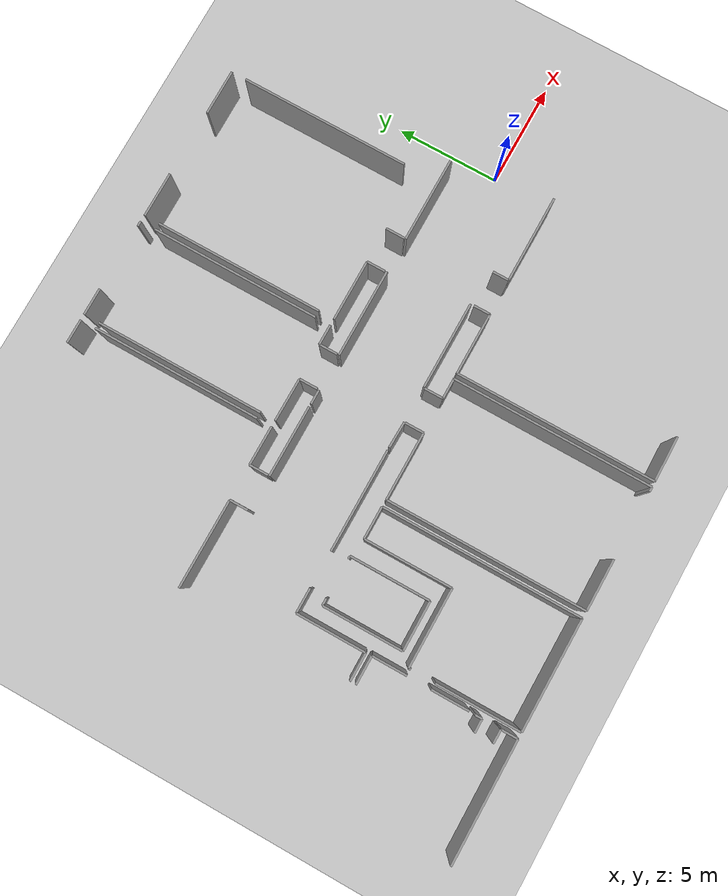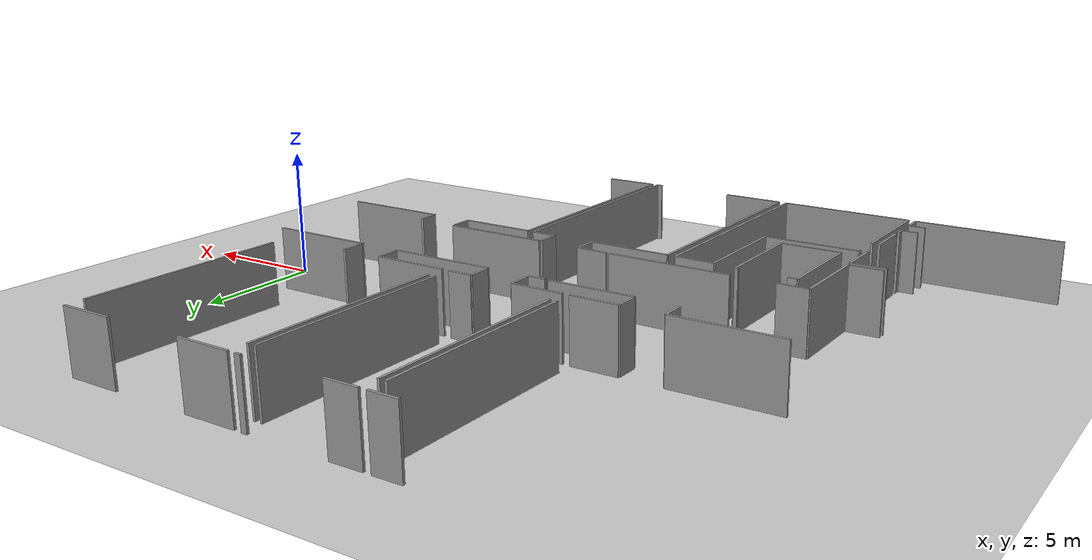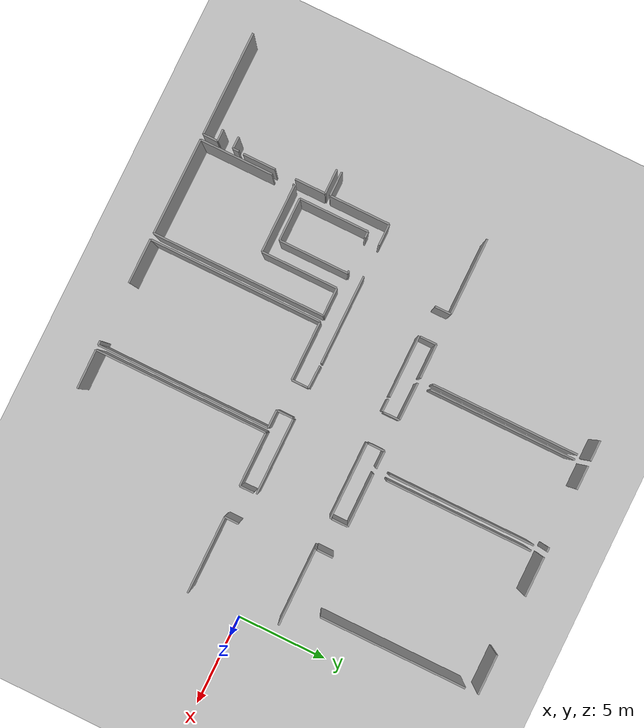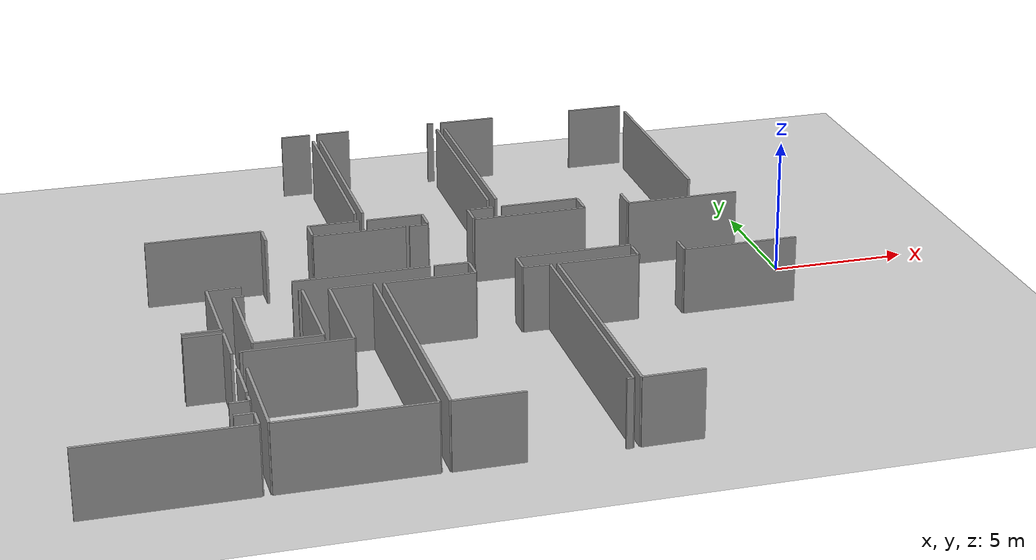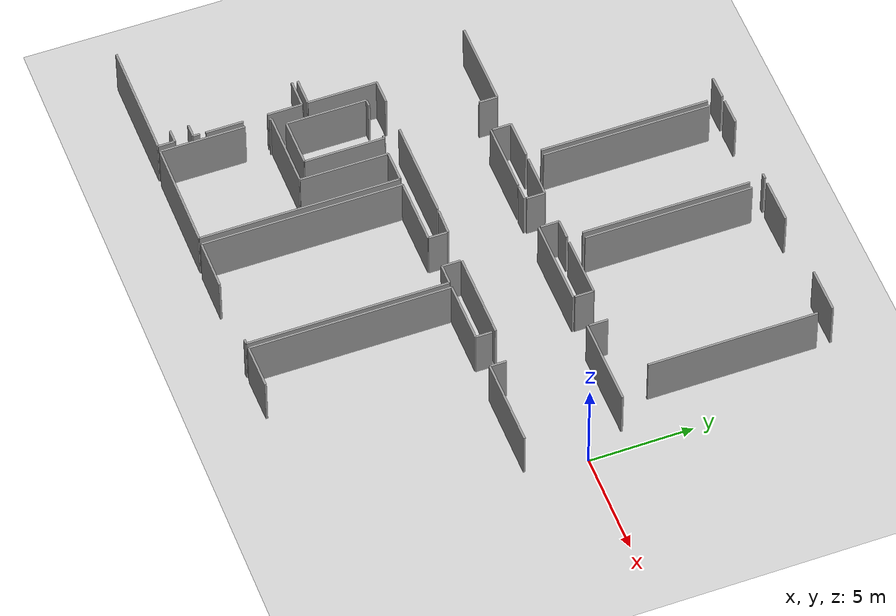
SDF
<sdf version="1.6">
 <world name="default">
  <model name="ground_plane">
   <static>1</static>
   <link name="link">
    <collision name="collision">
     <geometry><plane><normal>0 0 1</normal><size>100 100</size></plane></geometry>
     <surface><friction><ode><mu>100</mu><mu2>50</mu2></ode></friction></surface>
    </collision>
    <visual name="visual">
     <cast_shadows>0</cast_shadows>
     <geometry><plane><normal>0 0 1</normal><size>100 100</size></plane></geometry>
     <material>
      <script><uri>file://media/materials/scripts/gazebo.material</uri><name>Gazebo/Grey</name></script>
     </material>
    </visual>
   </link>
  </model>
  <model name="50052754">
   <static>1</static>
   <link name="Wall_12">
    <collision name="Wall_12_Collision">
     <geometry><box><size>1.14437858569 0.1 2.5</size></box></geometry>
     <pose>0.572189292846 0 1.25 0 0 0</pose>
    </collision>
    <visual name="Wall_12_Visual">
     <pose>0.572189292846 0 1.25 0 0 0</pose>
     <geometry><box><size>1.14437858569 0.1 2.5</size></box></geometry>
     <material>
      <script><uri>file://media/materials/scripts/gazebo.material</uri><name>Gazebo/Grey</name></script>
      <ambient>1 1 1 1</ambient>
     </material>
    </visual>
    <pose>22.520396843 -0.00456432850487 0 0 0 0.0</pose>
   </link>
   <link name="Wall_13">
    <collision name="Wall_13_Collision">
     <geometry><box><size>8.13198516593 0.1 2.5</size></box></geometry>
     <pose>4.06599258297 0 1.25 0 0 0</pose>
    </collision>
    <visual name="Wall_13_Visual">
     <pose>4.06599258297 0 1.25 0 0 0</pose>
     <geometry><box><size>8.13198516593 0.1 2.5</size></box></geometry>
     <material>
      <script><uri>file://media/materials/scripts/gazebo.material</uri><name>Gazebo/Grey</name></script>
      <ambient>1 1 1 1</ambient>
     </material>
    </visual>
    <pose>23.6647754287 -0.729024691749 0 0 0 -1.57079632679</pose>
   </link>
   <link name="Wall_14">
    <collision name="Wall_14_Collision">
     <geometry><box><size>1.9021839044 0.1 2.5</size></box></geometry>
     <pose>0.951091952201 0 1.25 0 0 0</pose>
    </collision>
    <visual name="Wall_14_Visual">
     <pose>0.951091952201 0 1.25 0 0 0</pose>
     <geometry><box><size>1.9021839044 0.1 2.5</size></box></geometry>
     <material>
      <script><uri>file://media/materials/scripts/gazebo.material</uri><name>Gazebo/Grey</name></script>
      <ambient>1 1 1 1</ambient>
     </material>
    </visual>
    <pose>23.6647754287 -9.58597736854 0 0 0 3.14159265359</pose>
   </link>
   <link name="Wall_15">
    <collision name="Wall_15_Collision">
     <geometry><box><size>0.907413864148 0.1 2.5</size></box></geometry>
     <pose>0.453706932074 0 1.25 0 0 0</pose>
    </collision>
    <visual name="Wall_15_Visual">
     <pose>0.453706932074 0 1.25 0 0 0</pose>
     <geometry><box><size>0.907413864148 0.1 2.5</size></box></geometry>
     <material>
      <script><uri>file://media/materials/scripts/gazebo.material</uri><name>Gazebo/Grey</name></script>
      <ambient>1 1 1 1</ambient>
     </material>
    </visual>
    <pose>21.7625915243 -9.58597736854 0 0 0 -1.57079632679</pose>
   </link>
   <link name="Wall_16">
    <collision name="Wall_16_Collision">
     <geometry><box><size>0.890170845352 0.1 2.5</size></box></geometry>
     <pose>0.445085422676 0 1.25 0 0 0</pose>
    </collision>
    <visual name="Wall_16_Visual">
     <pose>0.445085422676 0 1.25 0 0 0</pose>
     <geometry><box><size>0.890170845352 0.1 2.5</size></box></geometry>
     <material>
      <script><uri>file://media/materials/scripts/gazebo.material</uri><name>Gazebo/Grey</name></script>
      <ambient>1 1 1 1</ambient>
     </material>
    </visual>
    <pose>20.0465307934 -10.4933912327 0 0 0 1.57079632679</pose>
   </link>
   <link name="Wall_17">
    <collision name="Wall_17_Collision">
     <geometry><box><size>4.25547560937 0.1 2.5</size></box></geometry>
     <pose>2.12773780468 0 1.25 0 0 0</pose>
    </collision>
    <visual name="Wall_17_Visual">
     <pose>2.12773780468 0 1.25 0 0 0</pose>
     <geometry><box><size>4.25547560937 0.1 2.5</size></box></geometry>
     <material>
      <script><uri>file://media/materials/scripts/gazebo.material</uri><name>Gazebo/Grey</name></script>
      <ambient>1 1 1 1</ambient>
     </material>
    </visual>
    <pose>20.0465307934 -9.60322038733 0 0 0 3.14159265359</pose>
   </link>
   <link name="Wall_33">
    <collision name="Wall_33_Collision">
     <geometry><box><size>3.44099654506 0.1 2.5</size></box></geometry>
     <pose>1.72049827253 0 1.25 0 0 0</pose>
    </collision>
    <visual name="Wall_33_Visual">
     <pose>1.72049827253 0 1.25 0 0 0</pose>
     <geometry><box><size>3.44099654506 0.1 2.5</size></box></geometry>
     <material>
      <script><uri>file://media/materials/scripts/gazebo.material</uri><name>Gazebo/Grey</name></script>
      <ambient>1 1 1 1</ambient>
     </material>
    </visual>
    <pose>21.7524485721 -10.5665472757 0 0 0 0.0</pose>
   </link>
   <link name="Wall_34">
    <collision name="Wall_34_Collision">
     <geometry><box><size>4.93429268757 0.1 2.5</size></box></geometry>
     <pose>2.46714634378 0 1.25 0 0 0</pose>
    </collision>
    <visual name="Wall_34_Visual">
     <pose>2.46714634378 0 1.25 0 0 0</pose>
     <geometry><box><size>4.93429268757 0.1 2.5</size></box></geometry>
     <material>
      <script><uri>file://media/materials/scripts/gazebo.material</uri><name>Gazebo/Grey</name></script>
      <ambient>1 1 1 1</ambient>
     </material>
    </visual>
    <pose>25.1934451171 -14.4353228312 0 0 0 3.14159265359</pose>
   </link>
   <link name="Wall_35">
    <collision name="Wall_35_Collision">
     <geometry><box><size>1.2011791182 0.1 2.5</size></box></geometry>
     <pose>0.600589559099 0 1.25 0 0 0</pose>
    </collision>
    <visual name="Wall_35_Visual">
     <pose>0.600589559099 0 1.25 0 0 0</pose>
     <geometry><box><size>1.2011791182 0.1 2.5</size></box></geometry>
     <material>
      <script><uri>file://media/materials/scripts/gazebo.material</uri><name>Gazebo/Grey</name></script>
      <ambient>1 1 1 1</ambient>
     </material>
    </visual>
    <pose>18.4888269042 -14.4353228312 0 0 0 3.14159265359</pose>
   </link>
   <link name="Wall_36">
    <collision name="Wall_36_Collision">
     <geometry><box><size>3.34970997496 0.1 2.5</size></box></geometry>
     <pose>1.67485498748 0 1.25 0 0 0</pose>
    </collision>
    <visual name="Wall_36_Visual">
     <pose>1.67485498748 0 1.25 0 0 0</pose>
     <geometry><box><size>3.34970997496 0.1 2.5</size></box></geometry>
     <material>
      <script><uri>file://media/materials/scripts/gazebo.material</uri><name>Gazebo/Grey</name></script>
      <ambient>1 1 1 1</ambient>
     </material>
    </visual>
    <pose>17.287647786 -14.4353228312 0 0 0 -1.57079632679</pose>
   </link>
   <link name="Wall_37">
    <collision name="Wall_37_Collision">
     <geometry><box><size>1.34520903991 0.1 2.5</size></box></geometry>
     <pose>0.672604519953 0 1.25 0 0 0</pose>
    </collision>
    <visual name="Wall_37_Visual">
     <pose>0.672604519953 0 1.25 0 0 0</pose>
     <geometry><box><size>1.34520903991 0.1 2.5</size></box></geometry>
     <material>
      <script><uri>file://media/materials/scripts/gazebo.material</uri><name>Gazebo/Grey</name></script>
      <ambient>1 1 1 1</ambient>
     </material>
    </visual>
    <pose>17.287647786 -17.7850328061 0 0 0 3.14159265359</pose>
   </link>
   <link name="Wall_39">
    <collision name="Wall_39_Collision">
     <geometry><box><size>3.87283273638 0.1 2.5</size></box></geometry>
     <pose>1.93641636819 0 1.25 0 0 0</pose>
    </collision>
    <visual name="Wall_39_Visual">
     <pose>1.93641636819 0 1.25 0 0 0</pose>
     <geometry><box><size>3.87283273638 0.1 2.5</size></box></geometry>
     <material>
      <script><uri>file://media/materials/scripts/gazebo.material</uri><name>Gazebo/Grey</name></script>
      <ambient>1 1 1 1</ambient>
     </material>
    </visual>
    <pose>18.1016197027 -19.1108434499 0 0 0 1.57079632679</pose>
   </link>
   <link name="Wall_40">
    <collision name="Wall_40_Collision">
     <geometry><box><size>0.355256901962 0.1 2.5</size></box></geometry>
     <pose>0.177628450981 0 1.25 0 0 0</pose>
    </collision>
    <visual name="Wall_40_Visual">
     <pose>0.177628450981 0 1.25 0 0 0</pose>
     <geometry><box><size>0.355256901962 0.1 2.5</size></box></geometry>
     <material>
      <script><uri>file://media/materials/scripts/gazebo.material</uri><name>Gazebo/Grey</name></script>
      <ambient>1 1 1 1</ambient>
     </material>
    </visual>
    <pose>18.1016197027 -15.2380107135 0 0 0 0.0</pose>
   </link>
   <link name="Wall_41">
    <collision name="Wall_41_Collision">
     <geometry><box><size>0.140860249136 0.1 2.5</size></box></geometry>
     <pose>0.0704301245681 0 1.25 0 0 0</pose>
    </collision>
    <visual name="Wall_41_Visual">
     <pose>0.0704301245681 0 1.25 0 0 0</pose>
     <geometry><box><size>0.140860249136 0.1 2.5</size></box></geometry>
     <material>
      <script><uri>file://media/materials/scripts/gazebo.material</uri><name>Gazebo/Grey</name></script>
      <ambient>1 1 1 1</ambient>
     </material>
    </visual>
    <pose>20.3361120796 -15.2380107135 0 0 0 0.0</pose>
   </link>
   <link name="Wall_42">
    <collision name="Wall_42_Collision">
     <geometry><box><size>3.86700053884 0.1 2.5</size></box></geometry>
     <pose>1.93350026942 0 1.25 0 0 0</pose>
    </collision>
    <visual name="Wall_42_Visual">
     <pose>1.93350026942 0 1.25 0 0 0</pose>
     <geometry><box><size>3.86700053884 0.1 2.5</size></box></geometry>
     <material>
      <script><uri>file://media/materials/scripts/gazebo.material</uri><name>Gazebo/Grey</name></script>
      <ambient>1 1 1 1</ambient>
     </material>
    </visual>
    <pose>20.4769723288 -15.2380107135 0 0 0 -1.57079632679</pose>
   </link>
   <link name="Wall_43">
    <collision name="Wall_43_Collision">
     <geometry><box><size>2.37535978595 0.1 2.5</size></box></geometry>
     <pose>1.18767989298 0 1.25 0 0 0</pose>
    </collision>
    <visual name="Wall_43_Visual">
     <pose>1.18767989298 0 1.25 0 0 0</pose>
     <geometry><box><size>2.37535978595 0.1 2.5</size></box></geometry>
     <material>
      <script><uri>file://media/materials/scripts/gazebo.material</uri><name>Gazebo/Grey</name></script>
      <ambient>1 1 1 1</ambient>
     </material>
    </visual>
    <pose>20.4769723288 -19.1050112523 0 0 0 -3.13913736095</pose>
   </link>
   <link name="Wall_46">
    <collision name="Wall_46_Collision">
     <geometry><box><size>1.81229199024 0.1 2.5</size></box></geometry>
     <pose>0.906145995119 0 1.25 0 0 0</pose>
    </collision>
    <visual name="Wall_46_Visual">
     <pose>0.906145995119 0 1.25 0 0 0</pose>
     <geometry><box><size>1.81229199024 0.1 2.5</size></box></geometry>
     <material>
      <script><uri>file://media/materials/scripts/gazebo.material</uri><name>Gazebo/Grey</name></script>
      <ambient>1 1 1 1</ambient>
     </material>
    </visual>
    <pose>17.3047640179 -22.7137468699 0 0 0 1.57079632679</pose>
   </link>
   <link name="Wall_47">
    <collision name="Wall_47_Collision">
     <geometry><box><size>1.68930869441 0.1 2.5</size></box></geometry>
     <pose>0.844654347206 0 1.25 0 0 0</pose>
    </collision>
    <visual name="Wall_47_Visual">
     <pose>0.844654347206 0 1.25 0 0 0</pose>
     <geometry><box><size>1.68930869441 0.1 2.5</size></box></geometry>
     <material>
      <script><uri>file://media/materials/scripts/gazebo.material</uri><name>Gazebo/Grey</name></script>
      <ambient>1 1 1 1</ambient>
     </material>
    </visual>
    <pose>17.3047640179 -19.7532726869 0 0 0 1.57079632679</pose>
   </link>
   <link name="Wall_48">
    <collision name="Wall_48_Collision">
     <geometry><box><size>1.36955212527 0.1 2.5</size></box></geometry>
     <pose>0.684776062633 0 1.25 0 0 0</pose>
    </collision>
    <visual name="Wall_48_Visual">
     <pose>0.684776062633 0 1.25 0 0 0</pose>
     <geometry><box><size>1.36955212527 0.1 2.5</size></box></geometry>
     <material>
      <script><uri>file://media/materials/scripts/gazebo.material</uri><name>Gazebo/Grey</name></script>
      <ambient>1 1 1 1</ambient>
     </material>
    </visual>
    <pose>17.3047640179 -18.0639639925 0 0 0 3.14159265359</pose>
   </link>
   <link name="Wall_53">
    <collision name="Wall_53_Collision">
     <geometry><box><size>4.07987574884 0.1 2.5</size></box></geometry>
     <pose>2.03993787442 0 1.25 0 0 0</pose>
    </collision>
    <visual name="Wall_53_Visual">
     <pose>2.03993787442 0 1.25 0 0 0</pose>
     <geometry><box><size>4.07987574884 0.1 2.5</size></box></geometry>
     <material>
      <script><uri>file://media/materials/scripts/gazebo.material</uri><name>Gazebo/Grey</name></script>
      <ambient>1 1 1 1</ambient>
     </material>
    </visual>
    <pose>17.6056293385 -25.0041522711 0 0 0 1.57079632679</pose>
   </link>
   <link name="Wall_54">
    <collision name="Wall_54_Collision">
     <geometry><box><size>0.10967067102 0.1 2.5</size></box></geometry>
     <pose>0.0548353355098 0 1.25 0 0 0</pose>
    </collision>
    <visual name="Wall_54_Visual">
     <pose>0.0548353355098 0 1.25 0 0 0</pose>
     <geometry><box><size>0.10967067102 0.1 2.5</size></box></geometry>
     <material>
      <script><uri>file://media/materials/scripts/gazebo.material</uri><name>Gazebo/Grey</name></script>
      <ambient>1 1 1 1</ambient>
     </material>
    </visual>
    <pose>17.6056293385 -19.7656978034 0 0 0 1.57079632679</pose>
   </link>
   <link name="Wall_55">
    <collision name="Wall_55_Collision">
     <geometry><box><size>3.78928016736 0.1 2.5</size></box></geometry>
     <pose>1.89464008368 0 1.25 0 0 0</pose>
    </collision>
    <visual name="Wall_55_Visual">
     <pose>1.89464008368 0 1.25 0 0 0</pose>
     <geometry><box><size>3.78928016736 0.1 2.5</size></box></geometry>
     <material>
      <script><uri>file://media/materials/scripts/gazebo.material</uri><name>Gazebo/Grey</name></script>
      <ambient>1 1 1 1</ambient>
     </material>
    </visual>
    <pose>17.6056293385 -19.6560271324 0 0 0 0.0</pose>
   </link>
   <link name="Wall_56">
    <collision name="Wall_56_Collision">
     <geometry><box><size>4.25167200228 0.1 2.5</size></box></geometry>
     <pose>2.12583600114 0 1.25 0 0 0</pose>
    </collision>
    <visual name="Wall_56_Visual">
     <pose>2.12583600114 0 1.25 0 0 0</pose>
     <geometry><box><size>4.25167200228 0.1 2.5</size></box></geometry>
     <material>
      <script><uri>file://media/materials/scripts/gazebo.material</uri><name>Gazebo/Grey</name></script>
      <ambient>1 1 1 1</ambient>
     </material>
    </visual>
    <pose>21.3949095058 -19.6560271324 0 0 0 1.57079632679</pose>
   </link>
   <link name="Wall_57">
    <collision name="Wall_57_Collision">
     <geometry><box><size>1.56949507116 0.1 2.5</size></box></geometry>
     <pose>0.78474753558 0 1.25 0 0 0</pose>
    </collision>
    <visual name="Wall_57_Visual">
     <pose>0.78474753558 0 1.25 0 0 0</pose>
     <geometry><box><size>1.56949507116 0.1 2.5</size></box></geometry>
     <material>
      <script><uri>file://media/materials/scripts/gazebo.material</uri><name>Gazebo/Grey</name></script>
      <ambient>1 1 1 1</ambient>
     </material>
    </visual>
    <pose>21.3949095058 -15.4043551301 0 0 0 0.0</pose>
   </link>
   <link name="Wall_58">
    <collision name="Wall_58_Collision">
     <geometry><box><size>9.61856160259 0.1 2.5</size></box></geometry>
     <pose>4.80928080129 0 1.25 0 0 0</pose>
    </collision>
    <visual name="Wall_58_Visual">
     <pose>4.80928080129 0 1.25 0 0 0</pose>
     <geometry><box><size>9.61856160259 0.1 2.5</size></box></geometry>
     <material>
      <script><uri>file://media/materials/scripts/gazebo.material</uri><name>Gazebo/Grey</name></script>
      <ambient>1 1 1 1</ambient>
     </material>
    </visual>
    <pose>22.964404577 -15.4043551301 0 0 0 -1.57079632679</pose>
   </link>
   <link name="Wall_59">
    <collision name="Wall_59_Collision">
     <geometry><box><size>5.35880809154 0.1 2.5</size></box></geometry>
     <pose>2.67940404577 0 1.25 0 0 0</pose>
    </collision>
    <visual name="Wall_59_Visual">
     <pose>2.67940404577 0 1.25 0 0 0</pose>
     <geometry><box><size>5.35880809154 0.1 2.5</size></box></geometry>
     <material>
      <script><uri>file://media/materials/scripts/gazebo.material</uri><name>Gazebo/Grey</name></script>
      <ambient>1 1 1 1</ambient>
     </material>
    </visual>
    <pose>22.964404577 -25.0229167327 0 0 0 3.13809103538</pose>
   </link>
   <link name="Wall_63">
    <collision name="Wall_63_Collision">
     <geometry><box><size>0.326349488098 0.1 2.5</size></box></geometry>
     <pose>0.163174744049 0 1.25 0 0 0</pose>
    </collision>
    <visual name="Wall_63_Visual">
     <pose>0.163174744049 0 1.25 0 0 0</pose>
     <geometry><box><size>0.326349488098 0.1 2.5</size></box></geometry>
     <material>
      <script><uri>file://media/materials/scripts/gazebo.material</uri><name>Gazebo/Grey</name></script>
      <ambient>1 1 1 1</ambient>
     </material>
    </visual>
    <pose>17.2892960157 -22.9857047767 0 0 0 -1.57079632679</pose>
   </link>
   <link name="Wall_64">
    <collision name="Wall_64_Collision">
     <geometry><box><size>0.657643665409 0.1 2.5</size></box></geometry>
     <pose>0.328821832705 0 1.25 0 0 0</pose>
    </collision>
    <visual name="Wall_64_Visual">
     <pose>0.328821832705 0 1.25 0 0 0</pose>
     <geometry><box><size>0.657643665409 0.1 2.5</size></box></geometry>
     <material>
      <script><uri>file://media/materials/scripts/gazebo.material</uri><name>Gazebo/Grey</name></script>
      <ambient>1 1 1 1</ambient>
     </material>
    </visual>
    <pose>17.2892960157 -23.3120542648 0 0 0 3.14159265359</pose>
   </link>
   <link name="Wall_66">
    <collision name="Wall_66_Collision">
     <geometry><box><size>0.663222289138 0.1 2.5</size></box></geometry>
     <pose>0.331611144569 0 1.25 0 0 0</pose>
    </collision>
    <visual name="Wall_66_Visual">
     <pose>0.331611144569 0 1.25 0 0 0</pose>
     <geometry><box><size>0.663222289138 0.1 2.5</size></box></geometry>
     <material>
      <script><uri>file://media/materials/scripts/gazebo.material</uri><name>Gazebo/Grey</name></script>
      <ambient>1 1 1 1</ambient>
     </material>
    </visual>
    <pose>16.6316523503 -24.194617896 0 0 0 0.0</pose>
   </link>
   <link name="Wall_67">
    <collision name="Wall_67_Collision">
     <geometry><box><size>0.805730768012 0.1 2.5</size></box></geometry>
     <pose>0.402865384006 0 1.25 0 0 0</pose>
    </collision>
    <visual name="Wall_67_Visual">
     <pose>0.402865384006 0 1.25 0 0 0</pose>
     <geometry><box><size>0.805730768012 0.1 2.5</size></box></geometry>
     <material>
      <script><uri>file://media/materials/scripts/gazebo.material</uri><name>Gazebo/Grey</name></script>
      <ambient>1 1 1 1</ambient>
     </material>
    </visual>
    <pose>17.2948746394 -24.194617896 0 0 0 -1.57079632679</pose>
   </link>
   <link name="Wall_68">
    <collision name="Wall_68_Collision">
     <geometry><box><size>5.79631800664 0.1 2.5</size></box></geometry>
     <pose>2.89815900332 0 1.25 0 0 0</pose>
    </collision>
    <visual name="Wall_68_Visual">
     <pose>2.89815900332 0 1.25 0 0 0</pose>
     <geometry><box><size>5.79631800664 0.1 2.5</size></box></geometry>
     <material>
      <script><uri>file://media/materials/scripts/gazebo.material</uri><name>Gazebo/Grey</name></script>
      <ambient>1 1 1 1</ambient>
     </material>
    </visual>
    <pose>17.2948746394 -25.000348664 0 0 0 -3.14095831634</pose>
   </link>
   <link name="Wall_95">
    <collision name="Wall_95_Collision">
     <geometry><box><size>0.694031506545 0.1 2.5</size></box></geometry>
     <pose>0.347015753273 0 1.25 0 0 0</pose>
    </collision>
    <visual name="Wall_95_Visual">
     <pose>0.347015753273 0 1.25 0 0 0</pose>
     <geometry><box><size>0.694031506545 0.1 2.5</size></box></geometry>
     <material>
      <script><uri>file://media/materials/scripts/gazebo.material</uri><name>Gazebo/Grey</name></script>
      <ambient>1 1 1 1</ambient>
     </material>
    </visual>
    <pose>25.3305017592 -10.5760562934 0 0 0 0.0</pose>
   </link>
   <link name="Wall_96">
    <collision name="Wall_96_Collision">
     <geometry><box><size>4.25902564265 0.1 2.5</size></box></geometry>
     <pose>2.12951282133 0 1.25 0 0 0</pose>
    </collision>
    <visual name="Wall_96_Visual">
     <pose>2.12951282133 0 1.25 0 0 0</pose>
     <geometry><box><size>4.25902564265 0.1 2.5</size></box></geometry>
     <material>
      <script><uri>file://media/materials/scripts/gazebo.material</uri><name>Gazebo/Grey</name></script>
      <ambient>1 1 1 1</ambient>
     </material>
    </visual>
    <pose>27.7952391518 -10.5760562934 0 0 0 0.0</pose>
   </link>
   <link name="Wall_97">
    <collision name="Wall_97_Collision">
     <geometry><box><size>4.25065770706 0.1 2.5</size></box></geometry>
     <pose>2.12532885353 0 1.25 0 0 0</pose>
    </collision>
    <visual name="Wall_97_Visual">
     <pose>2.12532885353 0 1.25 0 0 0</pose>
     <geometry><box><size>4.25065770706 0.1 2.5</size></box></geometry>
     <material>
      <script><uri>file://media/materials/scripts/gazebo.material</uri><name>Gazebo/Grey</name></script>
      <ambient>1 1 1 1</ambient>
     </material>
    </visual>
    <pose>33.7527021459 -10.5760562934 0 0 0 0.0</pose>
   </link>
   <link name="Wall_113">
    <collision name="Wall_113_Collision">
     <geometry><box><size>4.21705917779 0.1 2.5</size></box></geometry>
     <pose>2.10852958889 0 1.25 0 0 0</pose>
    </collision>
    <visual name="Wall_113_Visual">
     <pose>2.10852958889 0 1.25 0 0 0</pose>
     <geometry><box><size>4.21705917779 0.1 2.5</size></box></geometry>
     <material>
      <script><uri>file://media/materials/scripts/gazebo.material</uri><name>Gazebo/Grey</name></script>
      <ambient>1 1 1 1</ambient>
     </material>
    </visual>
    <pose>32.5702874893 -14.470823164 0 0 0 3.14159265359</pose>
   </link>
   <link name="Wall_114">
    <collision name="Wall_114_Collision">
     <geometry><box><size>1.27058218687 0.1 2.5</size></box></geometry>
     <pose>0.635291093435 0 1.25 0 0 0</pose>
    </collision>
    <visual name="Wall_114_Visual">
     <pose>0.635291093435 0 1.25 0 0 0</pose>
     <geometry><box><size>1.27058218687 0.1 2.5</size></box></geometry>
     <material>
      <script><uri>file://media/materials/scripts/gazebo.material</uri><name>Gazebo/Grey</name></script>
      <ambient>1 1 1 1</ambient>
     </material>
    </visual>
    <pose>26.6006529525 -14.470823164 0 0 0 3.11554544142</pose>
   </link>
   <link name="Wall_115">
    <collision name="Wall_115_Collision">
     <geometry><box><size>8.11829218042 0.1 2.5</size></box></geometry>
     <pose>4.05914609021 0 1.25 0 0 0</pose>
    </collision>
    <visual name="Wall_115_Visual">
     <pose>4.05914609021 0 1.25 0 0 0</pose>
     <geometry><box><size>8.11829218042 0.1 2.5</size></box></geometry>
     <material>
      <script><uri>file://media/materials/scripts/gazebo.material</uri><name>Gazebo/Grey</name></script>
      <ambient>1 1 1 1</ambient>
     </material>
    </visual>
    <pose>23.9510602555 -8.86012234936 0 0 0 1.57079632679</pose>
   </link>
   <link name="Wall_116">
    <collision name="Wall_116_Collision">
     <geometry><box><size>1.30818726426 0.1 2.5</size></box></geometry>
     <pose>0.654093632128 0 1.25 0 0 0</pose>
    </collision>
    <visual name="Wall_116_Visual">
     <pose>0.654093632128 0 1.25 0 0 0</pose>
     <geometry><box><size>1.30818726426 0.1 2.5</size></box></geometry>
     <material>
      <script><uri>file://media/materials/scripts/gazebo.material</uri><name>Gazebo/Grey</name></script>
      <ambient>1 1 1 1</ambient>
     </material>
    </visual>
    <pose>23.9510602555 -0.00431075469904 0 0 0 0.0</pose>
   </link>
   <link name="Wall_117">
    <collision name="Wall_117_Collision">
     <geometry><box><size>0.250657707059 0.1 2.5</size></box></geometry>
     <pose>0.125328853529 0 1.25 0 0 0</pose>
    </collision>
    <visual name="Wall_117_Visual">
     <pose>0.125328853529 0 1.25 0 0 0</pose>
     <geometry><box><size>0.250657707059 0.1 2.5</size></box></geometry>
     <material>
      <script><uri>file://media/materials/scripts/gazebo.material</uri><name>Gazebo/Grey</name></script>
      <ambient>1 1 1 1</ambient>
     </material>
    </visual>
    <pose>28.5096833497 -0.00431075469904 0 0 0 0.0</pose>
   </link>
   <link name="Wall_118">
    <collision name="Wall_118_Collision">
     <geometry><box><size>8.11106532695 0.1 2.5</size></box></geometry>
     <pose>4.05553266348 0 1.25 0 0 0</pose>
    </collision>
    <visual name="Wall_118_Visual">
     <pose>4.05553266348 0 1.25 0 0 0</pose>
     <geometry><box><size>8.11106532695 0.1 2.5</size></box></geometry>
     <material>
      <script><uri>file://media/materials/scripts/gazebo.material</uri><name>Gazebo/Grey</name></script>
      <ambient>1 1 1 1</ambient>
     </material>
    </visual>
    <pose>28.7603410568 -0.738280135662 0 0 0 -1.57079632679</pose>
   </link>
   <link name="Wall_119">
    <collision name="Wall_119_Collision">
     <geometry><box><size>0.970934102507 0.1 2.5</size></box></geometry>
     <pose>0.485467051254 0 1.25 0 0 0</pose>
    </collision>
    <visual name="Wall_119_Visual">
     <pose>0.485467051254 0 1.25 0 0 0</pose>
     <geometry><box><size>0.970934102507 0.1 2.5</size></box></geometry>
     <material>
      <script><uri>file://media/materials/scripts/gazebo.material</uri><name>Gazebo/Grey</name></script>
      <ambient>1 1 1 1</ambient>
     </material>
    </visual>
    <pose>28.7603410568 -9.59523281245 0 0 0 3.14159265359</pose>
   </link>
   <link name="Wall_120">
    <collision name="Wall_120_Collision">
     <geometry><box><size>0.890044058449 0.1 2.5</size></box></geometry>
     <pose>0.445022029224 0 1.25 0 0 0</pose>
    </collision>
    <visual name="Wall_120_Visual">
     <pose>0.445022029224 0 1.25 0 0 0</pose>
     <geometry><box><size>0.890044058449 0.1 2.5</size></box></geometry>
     <material>
      <script><uri>file://media/materials/scripts/gazebo.material</uri><name>Gazebo/Grey</name></script>
      <ambient>1 1 1 1</ambient>
     </material>
    </visual>
    <pose>27.7894069543 -9.59523281245 0 0 0 -1.57079632679</pose>
   </link>
   <link name="Wall_121">
    <collision name="Wall_121_Collision">
     <geometry><box><size>0.881929696662 0.1 2.5</size></box></geometry>
     <pose>0.440964848331 0 1.25 0 0 0</pose>
    </collision>
    <visual name="Wall_121_Visual">
     <pose>0.440964848331 0 1.25 0 0 0</pose>
     <geometry><box><size>0.881929696662 0.1 2.5</size></box></geometry>
     <material>
      <script><uri>file://media/materials/scripts/gazebo.material</uri><name>Gazebo/Grey</name></script>
      <ambient>1 1 1 1</ambient>
     </material>
    </visual>
    <pose>26.0432977273 -10.4852768709 0 0 0 1.57079632679</pose>
   </link>
   <link name="Wall_122">
    <collision name="Wall_122_Collision">
     <geometry><box><size>2.09228395425 0.1 2.5</size></box></geometry>
     <pose>1.04614197712 0 1.25 0 0 0</pose>
    </collision>
    <visual name="Wall_122_Visual">
     <pose>1.04614197712 0 1.25 0 0 0</pose>
     <geometry><box><size>2.09228395425 0.1 2.5</size></box></geometry>
     <material>
      <script><uri>file://media/materials/scripts/gazebo.material</uri><name>Gazebo/Grey</name></script>
      <ambient>1 1 1 1</ambient>
     </material>
    </visual>
    <pose>26.0432977273 -9.60334717424 0 0 0 3.13492689363</pose>
   </link>
   <link name="Wall_123">
    <collision name="Wall_123_Collision">
     <geometry><box><size>8.10282417826 0.1 2.5</size></box></geometry>
     <pose>4.05141208913 0 1.25 0 0 0</pose>
    </collision>
    <visual name="Wall_123_Visual">
     <pose>4.05141208913 0 1.25 0 0 0</pose>
     <geometry><box><size>8.10282417826 0.1 2.5</size></box></geometry>
     <material>
      <script><uri>file://media/materials/scripts/gazebo.material</uri><name>Gazebo/Grey</name></script>
      <ambient>1 1 1 1</ambient>
     </material>
    </visual>
    <pose>29.0717296903 -8.84820438049 0 0 0 1.57079632679</pose>
   </link>
   <link name="Wall_124">
    <collision name="Wall_124_Collision">
     <geometry><box><size>2.18415797648 0.1 2.5</size></box></geometry>
     <pose>1.09207898824 0 1.25 0 0 0</pose>
    </collision>
    <visual name="Wall_124_Visual">
     <pose>1.09207898824 0 1.25 0 0 0</pose>
     <geometry><box><size>2.18415797648 0.1 2.5</size></box></geometry>
     <material>
      <script><uri>file://media/materials/scripts/gazebo.material</uri><name>Gazebo/Grey</name></script>
      <ambient>1 1 1 1</ambient>
     </material>
    </visual>
    <pose>29.0717296903 -0.021807347301 0 0 0 0.0</pose>
   </link>
   <link name="Wall_125">
    <collision name="Wall_125_Collision">
     <geometry><box><size>2.20355637263 0.1 2.5</size></box></geometry>
     <pose>1.10177818631 0 1.25 0 0 0</pose>
    </collision>
    <visual name="Wall_125_Visual">
     <pose>1.10177818631 0 1.25 0 0 0</pose>
     <geometry><box><size>2.20355637263 0.1 2.5</size></box></geometry>
     <material>
      <script><uri>file://media/materials/scripts/gazebo.material</uri><name>Gazebo/Grey</name></script>
      <ambient>1 1 1 1</ambient>
     </material>
    </visual>
    <pose>34.5172271704 -0.021807347301 0 0 0 0.0</pose>
   </link>
   <link name="Wall_126">
    <collision name="Wall_126_Collision">
     <geometry><box><size>8.13528162541 0.1 2.5</size></box></geometry>
     <pose>4.0676408127 0 1.25 0 0 0</pose>
    </collision>
    <visual name="Wall_126_Visual">
     <pose>4.0676408127 0 1.25 0 0 0</pose>
     <geometry><box><size>8.13528162541 0.1 2.5</size></box></geometry>
     <material>
      <script><uri>file://media/materials/scripts/gazebo.material</uri><name>Gazebo/Grey</name></script>
      <ambient>1 1 1 1</ambient>
     </material>
    </visual>
    <pose>36.7207835431 -0.734349741672 0 0 0 -1.57079632679</pose>
   </link>
   <link name="Wall_128">
    <collision name="Wall_128_Collision">
     <geometry><box><size>0.899806649973 0.1 2.5</size></box></geometry>
     <pose>0.449903324987 0 1.25 0 0 0</pose>
    </collision>
    <visual name="Wall_128_Visual">
     <pose>0.449903324987 0 1.25 0 0 0</pose>
     <geometry><box><size>0.899806649973 0.1 2.5</size></box></geometry>
     <material>
      <script><uri>file://media/materials/scripts/gazebo.material</uri><name>Gazebo/Grey</name></script>
      <ambient>1 1 1 1</ambient>
     </material>
    </visual>
    <pose>33.7556182446 -9.59421851723 0 0 0 -1.57079632679</pose>
   </link>
   <link name="Wall_129">
    <collision name="Wall_129_Collision">
     <geometry><box><size>0.894481600051 0.1 2.5</size></box></geometry>
     <pose>0.447240800025 0 1.25 0 0 0</pose>
    </collision>
    <visual name="Wall_129_Visual">
     <pose>0.447240800025 0 1.25 0 0 0</pose>
     <geometry><box><size>0.894481600051 0.1 2.5</size></box></geometry>
     <material>
      <script><uri>file://media/materials/scripts/gazebo.material</uri><name>Gazebo/Grey</name></script>
      <ambient>1 1 1 1</ambient>
     </material>
    </visual>
    <pose>32.0284002663 -10.4940251672 0 0 0 1.57079632679</pose>
   </link>
   <link name="Wall_130">
    <collision name="Wall_130_Collision">
     <geometry><box><size>2.95667492539 0.1 2.5</size></box></geometry>
     <pose>1.4783374627 0 1.25 0 0 0</pose>
    </collision>
    <visual name="Wall_130_Visual">
     <pose>1.4783374627 0 1.25 0 0 0</pose>
     <geometry><box><size>2.95667492539 0.1 2.5</size></box></geometry>
     <material>
      <script><uri>file://media/materials/scripts/gazebo.material</uri><name>Gazebo/Grey</name></script>
      <ambient>1 1 1 1</ambient>
     </material>
    </visual>
    <pose>32.0284002663 -9.59954356715 0 0 0 -3.13987738941</pose>
   </link>
   <link name="Wall_238">
    <collision name="Wall_238_Collision">
     <geometry><box><size>9.60905258487 0.1 2.5</size></box></geometry>
     <pose>4.80452629243 0 1.25 0 0 0</pose>
    </collision>
    <visual name="Wall_238_Visual">
     <pose>4.80452629243 0 1.25 0 0 0</pose>
     <geometry><box><size>9.60905258487 0.1 2.5</size></box></geometry>
     <material>
      <script><uri>file://media/materials/scripts/gazebo.material</uri><name>Gazebo/Grey</name></script>
      <ambient>1 1 1 1</ambient>
     </material>
    </visual>
    <pose>29.58141304 -25.0334400456 0 0 0 1.57079632679</pose>
   </link>
   <link name="Wall_239">
    <collision name="Wall_239_Collision">
     <geometry><box><size>2.99356556468 0.1 2.5</size></box></geometry>
     <pose>1.49678278234 0 1.25 0 0 0</pose>
    </collision>
    <visual name="Wall_239_Visual">
     <pose>1.49678278234 0 1.25 0 0 0</pose>
     <geometry><box><size>2.99356556468 0.1 2.5</size></box></geometry>
     <material>
      <script><uri>file://media/materials/scripts/gazebo.material</uri><name>Gazebo/Grey</name></script>
      <ambient>1 1 1 1</ambient>
     </material>
    </visual>
    <pose>29.58141304 -15.4243874608 0 0 0 0.0</pose>
   </link>
   <link name="Wall_240">
    <collision name="Wall_240_Collision">
     <geometry><box><size>0.789248470633 0.1 2.5</size></box></geometry>
     <pose>0.394624235316 0 1.25 0 0 0</pose>
    </collision>
    <visual name="Wall_240_Visual">
     <pose>0.394624235316 0 1.25 0 0 0</pose>
     <geometry><box><size>0.789248470633 0.1 2.5</size></box></geometry>
     <material>
      <script><uri>file://media/materials/scripts/gazebo.material</uri><name>Gazebo/Grey</name></script>
      <ambient>1 1 1 1</ambient>
     </material>
    </visual>
    <pose>32.5749786047 -15.4243874608 0 0 0 1.57079632679</pose>
   </link>
   <link name="Wall_241">
    <collision name="Wall_241_Collision">
     <geometry><box><size>0.778471583885 0.1 2.5</size></box></geometry>
     <pose>0.389235791943 0 1.25 0 0 0</pose>
    </collision>
    <visual name="Wall_241_Visual">
     <pose>0.389235791943 0 1.25 0 0 0</pose>
     <geometry><box><size>0.778471583885 0.1 2.5</size></box></geometry>
     <material>
      <script><uri>file://media/materials/scripts/gazebo.material</uri><name>Gazebo/Grey</name></script>
      <ambient>1 1 1 1</ambient>
     </material>
    </visual>
    <pose>34.3158895686 -14.6351389901 0 0 0 -1.57079632679</pose>
   </link>
   <link name="Wall_242">
    <collision name="Wall_242_Collision">
     <geometry><box><size>4.24114868934 0.1 2.5</size></box></geometry>
     <pose>2.12057434467 0 1.25 0 0 0</pose>
    </collision>
    <visual name="Wall_242_Visual">
     <pose>2.12057434467 0 1.25 0 0 0</pose>
     <geometry><box><size>4.24114868934 0.1 2.5</size></box></geometry>
     <material>
      <script><uri>file://media/materials/scripts/gazebo.material</uri><name>Gazebo/Grey</name></script>
      <ambient>1 1 1 1</ambient>
     </material>
    </visual>
    <pose>34.3158895686 -15.413610574 0 0 0 0.0</pose>
   </link>
   <link name="Wall_249">
    <collision name="Wall_249_Collision">
     <geometry><box><size>2.18188910312 0.1 2.5</size></box></geometry>
     <pose>1.09094455156 0 1.25 0 0 0</pose>
    </collision>
    <visual name="Wall_249_Visual">
     <pose>1.09094455156 0 1.25 0 0 0</pose>
     <geometry><box><size>2.18188910312 0.1 2.5</size></box></geometry>
     <material>
      <script><uri>file://media/materials/scripts/gazebo.material</uri><name>Gazebo/Grey</name></script>
      <ambient>1 1 1 1</ambient>
     </material>
    </visual>
    <pose>31.7631620654 -25.0087165996 0 0 0 -3.13026119997</pose>
   </link>
   <link name="Wall_250">
    <collision name="Wall_250_Collision">
     <geometry><box><size>2.47589464008 0.1 2.5</size></box></geometry>
     <pose>1.23794732004 0 1.25 0 0 0</pose>
    </collision>
    <visual name="Wall_250_Visual">
     <pose>1.23794732004 0 1.25 0 0 0</pose>
     <geometry><box><size>2.47589464008 0.1 2.5</size></box></geometry>
     <material>
      <script><uri>file://media/materials/scripts/gazebo.material</uri><name>Gazebo/Grey</name></script>
      <ambient>1 1 1 1</ambient>
     </material>
    </visual>
    <pose>23.3161114457 -25.0388918825 0 0 0 0.0</pose>
   </link>
   <link name="Wall_251">
    <collision name="Wall_251_Collision">
     <geometry><box><size>0.233414688263 0.1 2.5</size></box></geometry>
     <pose>0.116707344131 0 1.25 0 0 0</pose>
    </collision>
    <visual name="Wall_251_Visual">
     <pose>0.116707344131 0 1.25 0 0 0</pose>
     <geometry><box><size>0.233414688263 0.1 2.5</size></box></geometry>
     <material>
      <script><uri>file://media/materials/scripts/gazebo.material</uri><name>Gazebo/Grey</name></script>
      <ambient>1 1 1 1</ambient>
     </material>
    </visual>
    <pose>29.0765475926 -25.0388918825 0 0 0 0.0</pose>
   </link>
   <link name="Wall_252">
    <collision name="Wall_252_Collision">
     <geometry><box><size>9.61539193001 0.1 2.5</size></box></geometry>
     <pose>4.80769596501 0 1.25 0 0 0</pose>
    </collision>
    <visual name="Wall_252_Visual">
     <pose>4.80769596501 0 1.25 0 0 0</pose>
     <geometry><box><size>9.61539193001 0.1 2.5</size></box></geometry>
     <material>
      <script><uri>file://media/materials/scripts/gazebo.material</uri><name>Gazebo/Grey</name></script>
      <ambient>1 1 1 1</ambient>
     </material>
    </visual>
    <pose>29.3099622809 -25.0388918825 0 0 0 1.57079632679</pose>
   </link>
   <link name="Wall_253">
    <collision name="Wall_253_Collision">
     <geometry><box><size>0.992868236711 0.1 2.5</size></box></geometry>
     <pose>0.496434118356 0 1.25 0 0 0</pose>
    </collision>
    <visual name="Wall_253_Visual">
     <pose>0.496434118356 0 1.25 0 0 0</pose>
     <geometry><box><size>0.992868236711 0.1 2.5</size></box></geometry>
     <material>
      <script><uri>file://media/materials/scripts/gazebo.material</uri><name>Gazebo/Grey</name></script>
      <ambient>1 1 1 1</ambient>
     </material>
    </visual>
    <pose>29.3099622809 -15.4234999525 0 0 0 3.14159265359</pose>
   </link>
   <link name="Wall_254">
    <collision name="Wall_254_Collision">
     <geometry><box><size>0.900820945196 0.1 2.5</size></box></geometry>
     <pose>0.450410472598 0 1.25 0 0 0</pose>
    </collision>
    <visual name="Wall_254_Visual">
     <pose>0.450410472598 0 1.25 0 0 0</pose>
     <geometry><box><size>0.900820945196 0.1 2.5</size></box></geometry>
     <material>
      <script><uri>file://media/materials/scripts/gazebo.material</uri><name>Gazebo/Grey</name></script>
      <ambient>1 1 1 1</ambient>
     </material>
    </visual>
    <pose>28.3170940442 -15.4234999525 0 0 0 1.57079632679</pose>
   </link>
   <link name="Wall_255">
    <collision name="Wall_255_Collision">
     <geometry><box><size>0.896003042886 0.1 2.5</size></box></geometry>
     <pose>0.448001521443 0 1.25 0 0 0</pose>
    </collision>
    <visual name="Wall_255_Visual">
     <pose>0.448001521443 0 1.25 0 0 0</pose>
     <geometry><box><size>0.896003042886 0.1 2.5</size></box></geometry>
     <material>
      <script><uri>file://media/materials/scripts/gazebo.material</uri><name>Gazebo/Grey</name></script>
      <ambient>1 1 1 1</ambient>
     </material>
    </visual>
    <pose>26.5964689848 -14.5226790073 0 0 0 -1.57079632679</pose>
   </link>
   <link name="Wall_256">
    <collision name="Wall_256_Collision">
     <geometry><box><size>3.28885226156 0.1 2.5</size></box></geometry>
     <pose>1.64442613078 0 1.25 0 0 0</pose>
    </collision>
    <visual name="Wall_256_Visual">
     <pose>1.64442613078 0 1.25 0 0 0</pose>
     <geometry><box><size>3.28885226156 0.1 2.5</size></box></geometry>
     <material>
      <script><uri>file://media/materials/scripts/gazebo.material</uri><name>Gazebo/Grey</name></script>
      <ambient>1 1 1 1</ambient>
     </material>
    </visual>
    <pose>26.5964689848 -15.4186820501 0 0 0 3.14159265359</pose>
   </link>
   <link name="Wall_257">
    <collision name="Wall_257_Collision">
     <geometry><box><size>9.62021358278 0.1 2.5</size></box></geometry>
     <pose>4.81010679139 0 1.25 0 0 0</pose>
    </collision>
    <visual name="Wall_257_Visual">
     <pose>4.81010679139 0 1.25 0 0 0</pose>
     <geometry><box><size>9.62021358278 0.1 2.5</size></box></geometry>
     <material>
      <script><uri>file://media/materials/scripts/gazebo.material</uri><name>Gazebo/Grey</name></script>
      <ambient>1 1 1 1</ambient>
     </material>
    </visual>
    <pose>23.3076167232 -15.4186820501 0 0 0 -1.569913319</pose>
   </link>
   <pose>-39.0 12.5388918825 0 0 0 0</pose>
  </model>
 </world>
</sdf>
